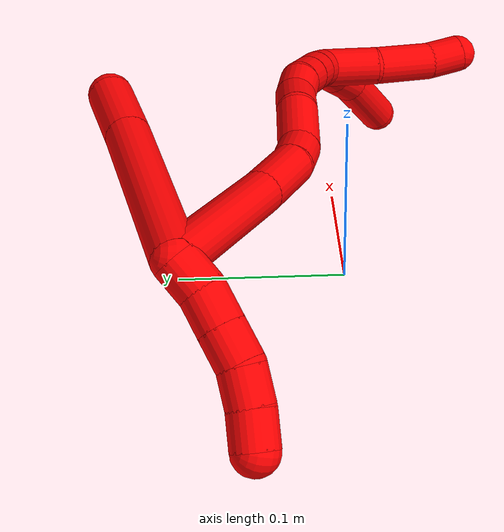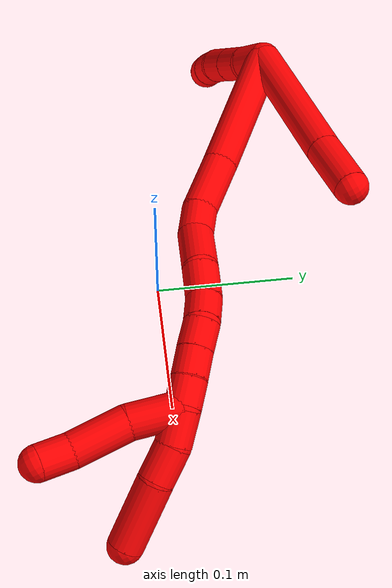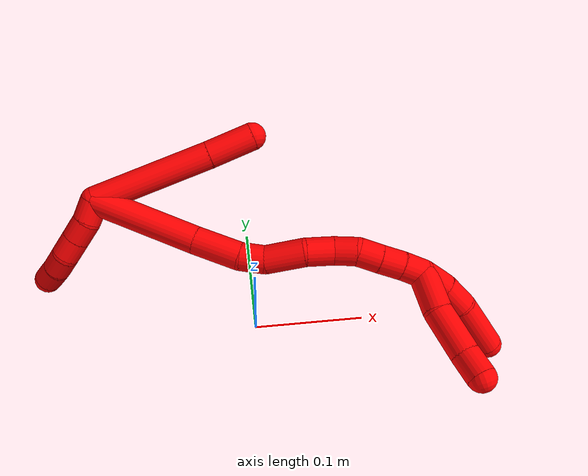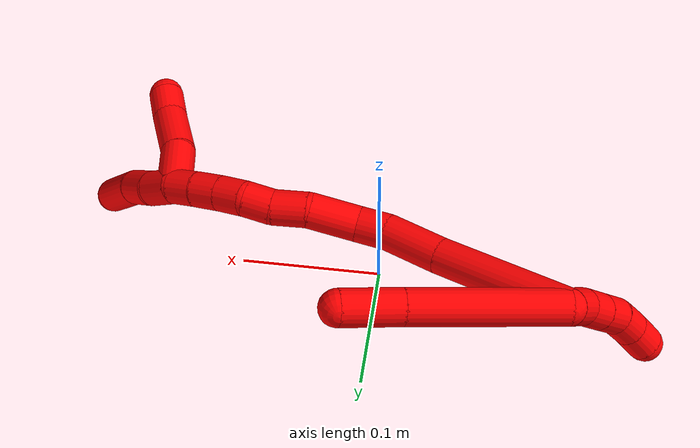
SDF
<sdf version="1.7">
 <world name="default">
  <model name="2">
   <static>0</static>
   <link name="2">
    <collision name="collision-cylinder-e_1_2_8">
     <pose>0.050316 0.019657 0.002866 -1.42604 1.19478 -1.06359</pose>
     <geometry><cylinder><radius>0.0125</radius><length>0.10819</length></cylinder></geometry>
     <surface>
      <friction><ode><mu>1.16</mu><mu2>1.16</mu2><slip1>0</slip1><slip2>0</slip2></ode></friction>
      <contact><ode><kp>1e+06</kp><kd>1</kd><max_vel>0</max_vel><min_depth>0.001</min_depth></ode></contact>
     </surface>
    </collision>
    <visual name="visual-cylinder-e_1_2_8">
     <pose>0.050316 0.019657 0.002866 -1.42604 1.19478 -1.06359</pose>
     <geometry><cylinder><radius>0.0125</radius><length>0.10819</length></cylinder></geometry>
     <material><ambient>1 0 0 1</ambient></material>
    </visual>
    <collision name="collision-cylinder-e_2_8_6">
     <pose>0.120029 0.046908 0.007481 -1.34427 1.18877 -0.986948</pose>
     <geometry><cylinder><radius>0.0125</radius><length>0.04181</length></cylinder></geometry>
     <surface>
      <friction><ode><mu>1.16</mu><mu2>1.16</mu2><slip1>0</slip1><slip2>0</slip2></ode></friction>
      <contact><ode><kp>1e+06</kp><kd>1</kd><max_vel>0</max_vel><min_depth>0.001</min_depth></ode></contact>
     </surface>
    </collision>
    <visual name="visual-cylinder-e_2_8_6">
     <pose>0.120029 0.046908 0.007481 -1.34427 1.18877 -0.986948</pose>
     <geometry><cylinder><radius>0.0125</radius><length>0.04181</length></cylinder></geometry>
     <material><ambient>1 0 0 1</ambient></material>
    </visual>
    <collision name="collision-cylinder-e_1_2_9">
     <pose>-0.007322 0.000735 -0.006771 -3.03345 -0.821552 2.89433</pose>
     <geometry><cylinder><radius>0.0125</radius><length>0.02</length></cylinder></geometry>
     <surface>
      <friction><ode><mu>1.16</mu><mu2>1.16</mu2><slip1>0</slip1><slip2>0</slip2></ode></friction>
      <contact><ode><kp>1e+06</kp><kd>1</kd><max_vel>0</max_vel><min_depth>0.001</min_depth></ode></contact>
     </surface>
    </collision>
    <visual name="visual-cylinder-e_1_2_9">
     <pose>-0.007322 0.000735 -0.006771 -3.03345 -0.821552 2.89433</pose>
     <geometry><cylinder><radius>0.0125</radius><length>0.02</length></cylinder></geometry>
     <material><ambient>1 0 0 1</ambient></material>
    </visual>
    <collision name="collision-cylinder-e_2_9_10">
     <pose>-0.023337 0.002649 -0.018343 -2.90081 -1.05377 2.73152</pose>
     <geometry><cylinder><radius>0.0125</radius><length>0.02</length></cylinder></geometry>
     <surface>
      <friction><ode><mu>1.16</mu><mu2>1.16</mu2><slip1>0</slip1><slip2>0</slip2></ode></friction>
      <contact><ode><kp>1e+06</kp><kd>1</kd><max_vel>0</max_vel><min_depth>0.001</min_depth></ode></contact>
     </surface>
    </collision>
    <visual name="visual-cylinder-e_2_9_10">
     <pose>-0.023337 0.002649 -0.018343 -2.90081 -1.05377 2.73152</pose>
     <geometry><cylinder><radius>0.0125</radius><length>0.02</length></cylinder></geometry>
     <material><ambient>1 0 0 1</ambient></material>
    </visual>
    <collision name="collision-cylinder-e_3_10_11">
     <pose>-0.040726 0.004938 -0.027953 -2.91485 -1.05448 2.75534</pose>
     <geometry><cylinder><radius>0.0125</radius><length>0.02</length></cylinder></geometry>
     <surface>
      <friction><ode><mu>1.16</mu><mu2>1.16</mu2><slip1>0</slip1><slip2>0</slip2></ode></friction>
      <contact><ode><kp>1e+06</kp><kd>1</kd><max_vel>0</max_vel><min_depth>0.001</min_depth></ode></contact>
     </surface>
    </collision>
    <visual name="visual-cylinder-e_3_10_11">
     <pose>-0.040726 0.004938 -0.027953 -2.91485 -1.05448 2.75534</pose>
     <geometry><cylinder><radius>0.0125</radius><length>0.02</length></cylinder></geometry>
     <material><ambient>1 0 0 1</ambient></material>
    </visual>
    <collision name="collision-cylinder-e_4_11_12">
     <pose>-0.058266 0.009422 -0.03599 -2.33383 -1.08506 1.90824</pose>
     <geometry><cylinder><radius>0.0125</radius><length>0.02</length></cylinder></geometry>
     <surface>
      <friction><ode><mu>1.16</mu><mu2>1.16</mu2><slip1>0</slip1><slip2>0</slip2></ode></friction>
      <contact><ode><kp>1e+06</kp><kd>1</kd><max_vel>0</max_vel><min_depth>0.001</min_depth></ode></contact>
     </surface>
    </collision>
    <visual name="visual-cylinder-e_4_11_12">
     <pose>-0.058266 0.009422 -0.03599 -2.33383 -1.08506 1.90824</pose>
     <geometry><cylinder><radius>0.0125</radius><length>0.02</length></cylinder></geometry>
     <material><ambient>1 0 0 1</ambient></material>
    </visual>
    <collision name="collision-cylinder-e_5_12_5">
     <pose>-0.076119 0.01664 -0.041228 -2.05286 -1.12205 1.60807</pose>
     <geometry><cylinder><radius>0.0125</radius><length>0.02</length></cylinder></geometry>
     <surface>
      <friction><ode><mu>1.16</mu><mu2>1.16</mu2><slip1>0</slip1><slip2>0</slip2></ode></friction>
      <contact><ode><kp>1e+06</kp><kd>1</kd><max_vel>0</max_vel><min_depth>0.001</min_depth></ode></contact>
     </surface>
    </collision>
    <visual name="visual-cylinder-e_5_12_5">
     <pose>-0.076119 0.01664 -0.041228 -2.05286 -1.12205 1.60807</pose>
     <geometry><cylinder><radius>0.0125</radius><length>0.02</length></cylinder></geometry>
     <material><ambient>1 0 0 1</ambient></material>
    </visual>
    <collision name="collision-cylinder-e_1_2_13">
     <pose>0.034279 0.012656 -0.031698 -2.76171 0.787558 -2.27479</pose>
     <geometry><cylinder><radius>0.0125</radius><length>0.096747</length></cylinder></geometry>
     <surface>
      <friction><ode><mu>1.16</mu><mu2>1.16</mu2><slip1>0</slip1><slip2>0</slip2></ode></friction>
      <contact><ode><kp>1e+06</kp><kd>1</kd><max_vel>0</max_vel><min_depth>0.001</min_depth></ode></contact>
     </surface>
    </collision>
    <visual name="visual-cylinder-e_1_2_13">
     <pose>0.034279 0.012656 -0.031698 -2.76171 0.787558 -2.27479</pose>
     <geometry><cylinder><radius>0.0125</radius><length>0.096747</length></cylinder></geometry>
     <material><ambient>1 0 0 1</ambient></material>
    </visual>
    <collision name="collision-cylinder-e_2_13_14">
     <pose>0.084042 0.029586 -0.076676 -2.83025 0.837405 -2.46351</pose>
     <geometry><cylinder><radius>0.0125</radius><length>0.041684</length></cylinder></geometry>
     <surface>
      <friction><ode><mu>1.16</mu><mu2>1.16</mu2><slip1>0</slip1><slip2>0</slip2></ode></friction>
      <contact><ode><kp>1e+06</kp><kd>1</kd><max_vel>0</max_vel><min_depth>0.001</min_depth></ode></contact>
     </surface>
    </collision>
    <visual name="visual-cylinder-e_2_13_14">
     <pose>0.084042 0.029586 -0.076676 -2.83025 0.837405 -2.46351</pose>
     <geometry><cylinder><radius>0.0125</radius><length>0.041684</length></cylinder></geometry>
     <material><ambient>1 0 0 1</ambient></material>
    </visual>
    <collision name="collision-cylinder-e_3_14_15">
     <pose>0.108681 0.037156 -0.094929 -2.55615 0.993392 -2.12668</pose>
     <geometry><cylinder><radius>0.0125</radius><length>0.021855</length></cylinder></geometry>
     <surface>
      <friction><ode><mu>1.16</mu><mu2>1.16</mu2><slip1>0</slip1><slip2>0</slip2></ode></friction>
      <contact><ode><kp>1e+06</kp><kd>1</kd><max_vel>0</max_vel><min_depth>0.001</min_depth></ode></contact>
     </surface>
    </collision>
    <visual name="visual-cylinder-e_3_14_15">
     <pose>0.108681 0.037156 -0.094929 -2.55615 0.993392 -2.12668</pose>
     <geometry><cylinder><radius>0.0125</radius><length>0.021855</length></cylinder></geometry>
     <material><ambient>1 0 0 1</ambient></material>
    </visual>
    <collision name="collision-cylinder-e_4_15_16">
     <pose>0.134884 0.043684 -0.102847 -2.31013 1.31966 -2.10694</pose>
     <geometry><cylinder><radius>0.0125</radius><length>0.035198</length></cylinder></geometry>
     <surface>
      <friction><ode><mu>1.16</mu><mu2>1.16</mu2><slip1>0</slip1><slip2>0</slip2></ode></friction>
      <contact><ode><kp>1e+06</kp><kd>1</kd><max_vel>0</max_vel><min_depth>0.001</min_depth></ode></contact>
     </surface>
    </collision>
    <visual name="visual-cylinder-e_4_15_16">
     <pose>0.134884 0.043684 -0.102847 -2.31013 1.31966 -2.10694</pose>
     <geometry><cylinder><radius>0.0125</radius><length>0.035198</length></cylinder></geometry>
     <material><ambient>1 0 0 1</ambient></material>
    </visual>
    <collision name="collision-cylinder-e_5_16_17">
     <pose>0.162537 0.052118 -0.109045 -2.12933 1.04639 -1.61062</pose>
     <geometry><cylinder><radius>0.0125</radius><length>0.024505</length></cylinder></geometry>
     <surface>
      <friction><ode><mu>1.16</mu><mu2>1.16</mu2><slip1>0</slip1><slip2>0</slip2></ode></friction>
      <contact><ode><kp>1e+06</kp><kd>1</kd><max_vel>0</max_vel><min_depth>0.001</min_depth></ode></contact>
     </surface>
    </collision>
    <visual name="visual-cylinder-e_5_16_17">
     <pose>0.162537 0.052118 -0.109045 -2.12933 1.04639 -1.61062</pose>
     <geometry><cylinder><radius>0.0125</radius><length>0.024505</length></cylinder></geometry>
     <material><ambient>1 0 0 1</ambient></material>
    </visual>
    <collision name="collision-cylinder-e_6_17_18">
     <pose>0.182119 0.059696 -0.116024 -2.57425 1.11317 -2.26525</pose>
     <geometry><cylinder><radius>0.0125</radius><length>0.020011</length></cylinder></geometry>
     <surface>
      <friction><ode><mu>1.16</mu><mu2>1.16</mu2><slip1>0</slip1><slip2>0</slip2></ode></friction>
      <contact><ode><kp>1e+06</kp><kd>1</kd><max_vel>0</max_vel><min_depth>0.001</min_depth></ode></contact>
     </surface>
    </collision>
    <visual name="visual-cylinder-e_6_17_18">
     <pose>0.182119 0.059696 -0.116024 -2.57425 1.11317 -2.26525</pose>
     <geometry><cylinder><radius>0.0125</radius><length>0.020011</length></cylinder></geometry>
     <material><ambient>1 0 0 1</ambient></material>
    </visual>
    <collision name="collision-cylinder-e_7_18_19">
     <pose>0.198132 0.065963 -0.125696 -2.56193 0.780657 -1.88718</pose>
     <geometry><cylinder><radius>0.0125</radius><length>0.02</length></cylinder></geometry>
     <surface>
      <friction><ode><mu>1.16</mu><mu2>1.16</mu2><slip1>0</slip1><slip2>0</slip2></ode></friction>
      <contact><ode><kp>1e+06</kp><kd>1</kd><max_vel>0</max_vel><min_depth>0.001</min_depth></ode></contact>
     </surface>
    </collision>
    <visual name="visual-cylinder-e_7_18_19">
     <pose>0.198132 0.065963 -0.125696 -2.56193 0.780657 -1.88718</pose>
     <geometry><cylinder><radius>0.0125</radius><length>0.02</length></cylinder></geometry>
     <material><ambient>1 0 0 1</ambient></material>
    </visual>
    <collision name="collision-cylinder-e_8_19_20">
     <pose>0.212227 0.074094 -0.137318 -2.50021 0.783359 -1.78698</pose>
     <geometry><cylinder><radius>0.0125</radius><length>0.02</length></cylinder></geometry>
     <surface>
      <friction><ode><mu>1.16</mu><mu2>1.16</mu2><slip1>0</slip1><slip2>0</slip2></ode></friction>
      <contact><ode><kp>1e+06</kp><kd>1</kd><max_vel>0</max_vel><min_depth>0.001</min_depth></ode></contact>
     </surface>
    </collision>
    <visual name="visual-cylinder-e_8_19_20">
     <pose>0.212227 0.074094 -0.137318 -2.50021 0.783359 -1.78698</pose>
     <geometry><cylinder><radius>0.0125</radius><length>0.02</length></cylinder></geometry>
     <material><ambient>1 0 0 1</ambient></material>
    </visual>
    <collision name="collision-cylinder-e_9_20_1">
     <pose>0.225766 0.082918 -0.149074 -2.49543 0.705337 -1.66531</pose>
     <geometry><cylinder><radius>0.0125</radius><length>0.02</length></cylinder></geometry>
     <surface>
      <friction><ode><mu>1.16</mu><mu2>1.16</mu2><slip1>0</slip1><slip2>0</slip2></ode></friction>
      <contact><ode><kp>1e+06</kp><kd>1</kd><max_vel>0</max_vel><min_depth>0.001</min_depth></ode></contact>
     </surface>
    </collision>
    <visual name="visual-cylinder-e_9_20_1">
     <pose>0.225766 0.082918 -0.149074 -2.49543 0.705337 -1.66531</pose>
     <geometry><cylinder><radius>0.0125</radius><length>0.02</length></cylinder></geometry>
     <material><ambient>1 0 0 1</ambient></material>
    </visual>
    <collision name="collision-cylinder-e_1_1_21">
     <pose>0.237418 0.094886 -0.163459 -2.41489 0.435297 -1.0536</pose>
     <geometry><cylinder><radius>0.0125</radius><length>0.024514</length></cylinder></geometry>
     <surface>
      <friction><ode><mu>1.16</mu><mu2>1.16</mu2><slip1>0</slip1><slip2>0</slip2></ode></friction>
      <contact><ode><kp>1e+06</kp><kd>1</kd><max_vel>0</max_vel><min_depth>0.001</min_depth></ode></contact>
     </surface>
    </collision>
    <visual name="visual-cylinder-e_1_1_21">
     <pose>0.237418 0.094886 -0.163459 -2.41489 0.435297 -1.0536</pose>
     <geometry><cylinder><radius>0.0125</radius><length>0.024514</length></cylinder></geometry>
     <material><ambient>1 0 0 1</ambient></material>
    </visual>
    <collision name="collision-cylinder-e_2_21_22">
     <pose>0.246353 0.108544 -0.182185 -2.59963 0.300365 -0.997508</pose>
     <geometry><cylinder><radius>0.0125</radius><length>0.025466</length></cylinder></geometry>
     <surface>
      <friction><ode><mu>1.16</mu><mu2>1.16</mu2><slip1>0</slip1><slip2>0</slip2></ode></friction>
      <contact><ode><kp>1e+06</kp><kd>1</kd><max_vel>0</max_vel><min_depth>0.001</min_depth></ode></contact>
     </surface>
    </collision>
    <visual name="visual-cylinder-e_2_21_22">
     <pose>0.246353 0.108544 -0.182185 -2.59963 0.300365 -0.997508</pose>
     <geometry><cylinder><radius>0.0125</radius><length>0.025466</length></cylinder></geometry>
     <material><ambient>1 0 0 1</ambient></material>
    </visual>
    <collision name="collision-cylinder-e_3_22_4">
     <pose>0.253051 0.129658 -0.212523 -2.50127 0.117434 -0.350939</pose>
     <geometry><cylinder><radius>0.0125</radius><length>0.05002</length></cylinder></geometry>
     <surface>
      <friction><ode><mu>1.16</mu><mu2>1.16</mu2><slip1>0</slip1><slip2>0</slip2></ode></friction>
      <contact><ode><kp>1e+06</kp><kd>1</kd><max_vel>0</max_vel><min_depth>0.001</min_depth></ode></contact>
     </surface>
    </collision>
    <visual name="visual-cylinder-e_3_22_4">
     <pose>0.253051 0.129658 -0.212523 -2.50127 0.117434 -0.350939</pose>
     <geometry><cylinder><radius>0.0125</radius><length>0.05002</length></cylinder></geometry>
     <material><ambient>1 0 0 1</ambient></material>
    </visual>
    <collision name="collision-cylinder-e_1_1_23">
     <pose>0.233293 0.081657 -0.172237 2.81192 0.057757 0.343877</pose>
     <geometry><cylinder><radius>0.0125</radius><length>0.036172</length></cylinder></geometry>
     <surface>
      <friction><ode><mu>1.16</mu><mu2>1.16</mu2><slip1>0</slip1><slip2>0</slip2></ode></friction>
      <contact><ode><kp>1e+06</kp><kd>1</kd><max_vel>0</max_vel><min_depth>0.001</min_depth></ode></contact>
     </surface>
    </collision>
    <visual name="visual-cylinder-e_1_1_23">
     <pose>0.233293 0.081657 -0.172237 2.81192 0.057757 0.343877</pose>
     <geometry><cylinder><radius>0.0125</radius><length>0.036172</length></cylinder></geometry>
     <material><ambient>1 0 0 1</ambient></material>
    </visual>
    <collision name="collision-cylinder-e_2_23_24">
     <pose>0.238958 0.072148 -0.208854 2.9562 0.22843 1.77949</pose>
     <geometry><cylinder><radius>0.0125</radius><length>0.040809</length></cylinder></geometry>
     <surface>
      <friction><ode><mu>1.16</mu><mu2>1.16</mu2><slip1>0</slip1><slip2>0</slip2></ode></friction>
      <contact><ode><kp>1e+06</kp><kd>1</kd><max_vel>0</max_vel><min_depth>0.001</min_depth></ode></contact>
     </surface>
    </collision>
    <visual name="visual-cylinder-e_2_23_24">
     <pose>0.238958 0.072148 -0.208854 2.9562 0.22843 1.77949</pose>
     <geometry><cylinder><radius>0.0125</radius><length>0.040809</length></cylinder></geometry>
     <material><ambient>1 0 0 1</ambient></material>
    </visual>
    <collision name="collision-cylinder-e_3_24_3">
     <pose>0.246805 0.064558 -0.238714 2.7782 0.284117 1.32294</pose>
     <geometry><cylinder><radius>0.0125</radius><length>0.023019</length></cylinder></geometry>
     <surface>
      <friction><ode><mu>1.16</mu><mu2>1.16</mu2><slip1>0</slip1><slip2>0</slip2></ode></friction>
      <contact><ode><kp>1e+06</kp><kd>1</kd><max_vel>0</max_vel><min_depth>0.001</min_depth></ode></contact>
     </surface>
    </collision>
    <visual name="visual-cylinder-e_3_24_3">
     <pose>0.246805 0.064558 -0.238714 2.7782 0.284117 1.32294</pose>
     <geometry><cylinder><radius>0.0125</radius><length>0.023019</length></cylinder></geometry>
     <material><ambient>1 0 0 1</ambient></material>
    </visual>
    <collision name="collision-sphere-3">
     <pose>0.250031 0.060631 -0.249041 0 -0 0</pose>
     <geometry><sphere><radius>0.0125</radius></sphere></geometry>
     <surface>
      <friction><ode><mu>1.16</mu><mu2>1.16</mu2><slip1>0</slip1><slip2>0</slip2></ode></friction>
      <contact><ode><kp>1e+06</kp><kd>1</kd><max_vel>0</max_vel><min_depth>0.001</min_depth></ode></contact>
     </surface>
    </collision>
    <visual name="visual-sphere-3">
     <pose>0.250031 0.060631 -0.249041 0 -0 0</pose>
     <geometry><sphere><radius>0.0125</radius></sphere></geometry>
     <material><ambient>1 0 0 1</ambient></material>
    </visual>
    <collision name="collision-sphere-24">
     <pose>0.243578 0.068485 -0.228388 0 -0 0</pose>
     <geometry><sphere><radius>0.0125</radius></sphere></geometry>
     <surface>
      <friction><ode><mu>1.16</mu><mu2>1.16</mu2><slip1>0</slip1><slip2>0</slip2></ode></friction>
      <contact><ode><kp>1e+06</kp><kd>1</kd><max_vel>0</max_vel><min_depth>0.001</min_depth></ode></contact>
     </surface>
    </collision>
    <visual name="visual-sphere-24">
     <pose>0.243578 0.068485 -0.228388 0 -0 0</pose>
     <geometry><sphere><radius>0.0125</radius></sphere></geometry>
     <material><ambient>1 0 0 1</ambient></material>
    </visual>
    <collision name="collision-sphere-23">
     <pose>0.234337 0.075812 -0.18932 0 -0 0</pose>
     <geometry><sphere><radius>0.0125</radius></sphere></geometry>
     <surface>
      <friction><ode><mu>1.16</mu><mu2>1.16</mu2><slip1>0</slip1><slip2>0</slip2></ode></friction>
      <contact><ode><kp>1e+06</kp><kd>1</kd><max_vel>0</max_vel><min_depth>0.001</min_depth></ode></contact>
     </surface>
    </collision>
    <visual name="visual-sphere-23">
     <pose>0.234337 0.075812 -0.18932 0 -0 0</pose>
     <geometry><sphere><radius>0.0125</radius></sphere></geometry>
     <material><ambient>1 0 0 1</ambient></material>
    </visual>
    <collision name="collision-sphere-4">
     <pose>0.255981 0.144497 -0.23244 0 -0 0</pose>
     <geometry><sphere><radius>0.0125</radius></sphere></geometry>
     <surface>
      <friction><ode><mu>1.16</mu><mu2>1.16</mu2><slip1>0</slip1><slip2>0</slip2></ode></friction>
      <contact><ode><kp>1e+06</kp><kd>1</kd><max_vel>0</max_vel><min_depth>0.001</min_depth></ode></contact>
     </surface>
    </collision>
    <visual name="visual-sphere-4">
     <pose>0.255981 0.144497 -0.23244 0 -0 0</pose>
     <geometry><sphere><radius>0.0125</radius></sphere></geometry>
     <material><ambient>1 0 0 1</ambient></material>
    </visual>
    <collision name="collision-sphere-22">
     <pose>0.250121 0.114818 -0.192605 0 -0 0</pose>
     <geometry><sphere><radius>0.0125</radius></sphere></geometry>
     <surface>
      <friction><ode><mu>1.16</mu><mu2>1.16</mu2><slip1>0</slip1><slip2>0</slip2></ode></friction>
      <contact><ode><kp>1e+06</kp><kd>1</kd><max_vel>0</max_vel><min_depth>0.001</min_depth></ode></contact>
     </surface>
    </collision>
    <visual name="visual-sphere-22">
     <pose>0.250121 0.114818 -0.192605 0 -0 0</pose>
     <geometry><sphere><radius>0.0125</radius></sphere></geometry>
     <material><ambient>1 0 0 1</ambient></material>
    </visual>
    <collision name="collision-sphere-21">
     <pose>0.242586 0.102271 -0.171765 0 -0 0</pose>
     <geometry><sphere><radius>0.0125</radius></sphere></geometry>
     <surface>
      <friction><ode><mu>1.16</mu><mu2>1.16</mu2><slip1>0</slip1><slip2>0</slip2></ode></friction>
      <contact><ode><kp>1e+06</kp><kd>1</kd><max_vel>0</max_vel><min_depth>0.001</min_depth></ode></contact>
     </surface>
    </collision>
    <visual name="visual-sphere-21">
     <pose>0.242586 0.102271 -0.171765 0 -0 0</pose>
     <geometry><sphere><radius>0.0125</radius></sphere></geometry>
     <material><ambient>1 0 0 1</ambient></material>
    </visual>
    <collision name="collision-sphere-1">
     <pose>0.232249 0.087502 -0.155153 0 -0 0</pose>
     <geometry><sphere><radius>0.0125</radius></sphere></geometry>
     <surface>
      <friction><ode><mu>1.16</mu><mu2>1.16</mu2><slip1>0</slip1><slip2>0</slip2></ode></friction>
      <contact><ode><kp>1e+06</kp><kd>1</kd><max_vel>0</max_vel><min_depth>0.001</min_depth></ode></contact>
     </surface>
    </collision>
    <visual name="visual-sphere-1">
     <pose>0.232249 0.087502 -0.155153 0 -0 0</pose>
     <geometry><sphere><radius>0.0125</radius></sphere></geometry>
     <material><ambient>1 0 0 1</ambient></material>
    </visual>
    <collision name="collision-sphere-11">
     <pose>-0.049423 0.006047 -0.032764 0 -0 0</pose>
     <geometry><sphere><radius>0.0125</radius></sphere></geometry>
     <surface>
      <friction><ode><mu>1.16</mu><mu2>1.16</mu2><slip1>0</slip1><slip2>0</slip2></ode></friction>
      <contact><ode><kp>1e+06</kp><kd>1</kd><max_vel>0</max_vel><min_depth>0.001</min_depth></ode></contact>
     </surface>
    </collision>
    <visual name="visual-sphere-11">
     <pose>-0.049423 0.006047 -0.032764 0 -0 0</pose>
     <geometry><sphere><radius>0.0125</radius></sphere></geometry>
     <material><ambient>1 0 0 1</ambient></material>
    </visual>
    <collision name="collision-sphere-10">
     <pose>-0.03203 0.003828 -0.023143 0 -0 0</pose>
     <geometry><sphere><radius>0.0125</radius></sphere></geometry>
     <surface>
      <friction><ode><mu>1.16</mu><mu2>1.16</mu2><slip1>0</slip1><slip2>0</slip2></ode></friction>
      <contact><ode><kp>1e+06</kp><kd>1</kd><max_vel>0</max_vel><min_depth>0.001</min_depth></ode></contact>
     </surface>
    </collision>
    <visual name="visual-sphere-10">
     <pose>-0.03203 0.003828 -0.023143 0 -0 0</pose>
     <geometry><sphere><radius>0.0125</radius></sphere></geometry>
     <material><ambient>1 0 0 1</ambient></material>
    </visual>
    <collision name="collision-sphere-6">
     <pose>0.139427 0.054503 0.009232 0 -0 0</pose>
     <geometry><sphere><radius>0.0125</radius></sphere></geometry>
     <surface>
      <friction><ode><mu>1.16</mu><mu2>1.16</mu2><slip1>0</slip1><slip2>0</slip2></ode></friction>
      <contact><ode><kp>1e+06</kp><kd>1</kd><max_vel>0</max_vel><min_depth>0.001</min_depth></ode></contact>
     </surface>
    </collision>
    <visual name="visual-sphere-6">
     <pose>0.139427 0.054503 0.009232 0 -0 0</pose>
     <geometry><sphere><radius>0.0125</radius></sphere></geometry>
     <material><ambient>1 0 0 1</ambient></material>
    </visual>
    <collision name="collision-sphere-9">
     <pose>-0.014644 0.00147 -0.013542 0 -0 0</pose>
     <geometry><sphere><radius>0.0125</radius></sphere></geometry>
     <surface>
      <friction><ode><mu>1.16</mu><mu2>1.16</mu2><slip1>0</slip1><slip2>0</slip2></ode></friction>
      <contact><ode><kp>1e+06</kp><kd>1</kd><max_vel>0</max_vel><min_depth>0.001</min_depth></ode></contact>
     </surface>
    </collision>
    <visual name="visual-sphere-9">
     <pose>-0.014644 0.00147 -0.013542 0 -0 0</pose>
     <geometry><sphere><radius>0.0125</radius></sphere></geometry>
     <material><ambient>1 0 0 1</ambient></material>
    </visual>
    <collision name="collision-sphere-2">
     <geometry><sphere><radius>0.0125</radius></sphere></geometry>
     <surface>
      <friction><ode><mu>1.16</mu><mu2>1.16</mu2><slip1>0</slip1><slip2>0</slip2></ode></friction>
      <contact><ode><kp>1e+06</kp><kd>1</kd><max_vel>0</max_vel><min_depth>0.001</min_depth></ode></contact>
     </surface>
    </collision>
    <visual name="visual-sphere-2">
     <geometry><sphere><radius>0.0125</radius></sphere></geometry>
     <material><ambient>1 0 0 1</ambient></material>
    </visual>
    <collision name="collision-sphere-19">
     <pose>0.20517 0.069855 -0.13164 0 -0 0</pose>
     <geometry><sphere><radius>0.0125</radius></sphere></geometry>
     <surface>
      <friction><ode><mu>1.16</mu><mu2>1.16</mu2><slip1>0</slip1><slip2>0</slip2></ode></friction>
      <contact><ode><kp>1e+06</kp><kd>1</kd><max_vel>0</max_vel><min_depth>0.001</min_depth></ode></contact>
     </surface>
    </collision>
    <visual name="visual-sphere-19">
     <pose>0.20517 0.069855 -0.13164 0 -0 0</pose>
     <geometry><sphere><radius>0.0125</radius></sphere></geometry>
     <material><ambient>1 0 0 1</ambient></material>
    </visual>
    <collision name="collision-sphere-8">
     <pose>0.100631 0.039314 0.005731 0 -0 0</pose>
     <geometry><sphere><radius>0.0125</radius></sphere></geometry>
     <surface>
      <friction><ode><mu>1.16</mu><mu2>1.16</mu2><slip1>0</slip1><slip2>0</slip2></ode></friction>
      <contact><ode><kp>1e+06</kp><kd>1</kd><max_vel>0</max_vel><min_depth>0.001</min_depth></ode></contact>
     </surface>
    </collision>
    <visual name="visual-sphere-8">
     <pose>0.100631 0.039314 0.005731 0 -0 0</pose>
     <geometry><sphere><radius>0.0125</radius></sphere></geometry>
     <material><ambient>1 0 0 1</ambient></material>
    </visual>
    <collision name="collision-sphere-12">
     <pose>-0.067109 0.012796 -0.039217 0 -0 0</pose>
     <geometry><sphere><radius>0.0125</radius></sphere></geometry>
     <surface>
      <friction><ode><mu>1.16</mu><mu2>1.16</mu2><slip1>0</slip1><slip2>0</slip2></ode></friction>
      <contact><ode><kp>1e+06</kp><kd>1</kd><max_vel>0</max_vel><min_depth>0.001</min_depth></ode></contact>
     </surface>
    </collision>
    <visual name="visual-sphere-12">
     <pose>-0.067109 0.012796 -0.039217 0 -0 0</pose>
     <geometry><sphere><radius>0.0125</radius></sphere></geometry>
     <material><ambient>1 0 0 1</ambient></material>
    </visual>
    <collision name="collision-sphere-5">
     <pose>-0.085129 0.020484 -0.043239 0 -0 0</pose>
     <geometry><sphere><radius>0.0125</radius></sphere></geometry>
     <surface>
      <friction><ode><mu>1.16</mu><mu2>1.16</mu2><slip1>0</slip1><slip2>0</slip2></ode></friction>
      <contact><ode><kp>1e+06</kp><kd>1</kd><max_vel>0</max_vel><min_depth>0.001</min_depth></ode></contact>
     </surface>
    </collision>
    <visual name="visual-sphere-5">
     <pose>-0.085129 0.020484 -0.043239 0 -0 0</pose>
     <geometry><sphere><radius>0.0125</radius></sphere></geometry>
     <material><ambient>1 0 0 1</ambient></material>
    </visual>
    <collision name="collision-sphere-13">
     <pose>0.068558 0.025313 -0.063396 0 -0 0</pose>
     <geometry><sphere><radius>0.0125</radius></sphere></geometry>
     <surface>
      <friction><ode><mu>1.16</mu><mu2>1.16</mu2><slip1>0</slip1><slip2>0</slip2></ode></friction>
      <contact><ode><kp>1e+06</kp><kd>1</kd><max_vel>0</max_vel><min_depth>0.001</min_depth></ode></contact>
     </surface>
    </collision>
    <visual name="visual-sphere-13">
     <pose>0.068558 0.025313 -0.063396 0 -0 0</pose>
     <geometry><sphere><radius>0.0125</radius></sphere></geometry>
     <material><ambient>1 0 0 1</ambient></material>
    </visual>
    <collision name="collision-sphere-14">
     <pose>0.099525 0.03386 -0.089957 0 -0 0</pose>
     <geometry><sphere><radius>0.0125</radius></sphere></geometry>
     <surface>
      <friction><ode><mu>1.16</mu><mu2>1.16</mu2><slip1>0</slip1><slip2>0</slip2></ode></friction>
      <contact><ode><kp>1e+06</kp><kd>1</kd><max_vel>0</max_vel><min_depth>0.001</min_depth></ode></contact>
     </surface>
    </collision>
    <visual name="visual-sphere-14">
     <pose>0.099525 0.03386 -0.089957 0 -0 0</pose>
     <geometry><sphere><radius>0.0125</radius></sphere></geometry>
     <material><ambient>1 0 0 1</ambient></material>
    </visual>
    <collision name="collision-sphere-15">
     <pose>0.117837 0.040452 -0.0999 0 -0 0</pose>
     <geometry><sphere><radius>0.0125</radius></sphere></geometry>
     <surface>
      <friction><ode><mu>1.16</mu><mu2>1.16</mu2><slip1>0</slip1><slip2>0</slip2></ode></friction>
      <contact><ode><kp>1e+06</kp><kd>1</kd><max_vel>0</max_vel><min_depth>0.001</min_depth></ode></contact>
     </surface>
    </collision>
    <visual name="visual-sphere-15">
     <pose>0.117837 0.040452 -0.0999 0 -0 0</pose>
     <geometry><sphere><radius>0.0125</radius></sphere></geometry>
     <material><ambient>1 0 0 1</ambient></material>
    </visual>
    <collision name="collision-sphere-16">
     <pose>0.151931 0.046916 -0.105794 0 -0 0</pose>
     <geometry><sphere><radius>0.0125</radius></sphere></geometry>
     <surface>
      <friction><ode><mu>1.16</mu><mu2>1.16</mu2><slip1>0</slip1><slip2>0</slip2></ode></friction>
      <contact><ode><kp>1e+06</kp><kd>1</kd><max_vel>0</max_vel><min_depth>0.001</min_depth></ode></contact>
     </surface>
    </collision>
    <visual name="visual-sphere-16">
     <pose>0.151931 0.046916 -0.105794 0 -0 0</pose>
     <geometry><sphere><radius>0.0125</radius></sphere></geometry>
     <material><ambient>1 0 0 1</ambient></material>
    </visual>
    <collision name="collision-sphere-17">
     <pose>0.173143 0.05732 -0.112296 0 -0 0</pose>
     <geometry><sphere><radius>0.0125</radius></sphere></geometry>
     <surface>
      <friction><ode><mu>1.16</mu><mu2>1.16</mu2><slip1>0</slip1><slip2>0</slip2></ode></friction>
      <contact><ode><kp>1e+06</kp><kd>1</kd><max_vel>0</max_vel><min_depth>0.001</min_depth></ode></contact>
     </surface>
    </collision>
    <visual name="visual-sphere-17">
     <pose>0.173143 0.05732 -0.112296 0 -0 0</pose>
     <geometry><sphere><radius>0.0125</radius></sphere></geometry>
     <material><ambient>1 0 0 1</ambient></material>
    </visual>
    <collision name="collision-sphere-18">
     <pose>0.191095 0.062072 -0.119752 0 -0 0</pose>
     <geometry><sphere><radius>0.0125</radius></sphere></geometry>
     <surface>
      <friction><ode><mu>1.16</mu><mu2>1.16</mu2><slip1>0</slip1><slip2>0</slip2></ode></friction>
      <contact><ode><kp>1e+06</kp><kd>1</kd><max_vel>0</max_vel><min_depth>0.001</min_depth></ode></contact>
     </surface>
    </collision>
    <visual name="visual-sphere-18">
     <pose>0.191095 0.062072 -0.119752 0 -0 0</pose>
     <geometry><sphere><radius>0.0125</radius></sphere></geometry>
     <material><ambient>1 0 0 1</ambient></material>
    </visual>
    <collision name="collision-sphere-20">
     <pose>0.219283 0.078333 -0.142995 0 -0 0</pose>
     <geometry><sphere><radius>0.0125</radius></sphere></geometry>
     <surface>
      <friction><ode><mu>1.16</mu><mu2>1.16</mu2><slip1>0</slip1><slip2>0</slip2></ode></friction>
      <contact><ode><kp>1e+06</kp><kd>1</kd><max_vel>0</max_vel><min_depth>0.001</min_depth></ode></contact>
     </surface>
    </collision>
    <visual name="visual-sphere-20">
     <pose>0.219283 0.078333 -0.142995 0 -0 0</pose>
     <geometry><sphere><radius>0.0125</radius></sphere></geometry>
     <material><ambient>1 0 0 1</ambient></material>
    </visual>
    <inertial>
     <pose>0.119016 0.047299 -0.088935 0 -0 0</pose>
     <mass>0.75</mass>
     <inertia>
      <ixx>-6.6e-05</ixx>
      <ixy>0</ixy>
      <ixz>0</ixz>
      <iyy>0.000108</iyy>
      <iyz>0</iyz>
      <izz>-0.000288</izz>
     </inertia>
    </inertial>
   </link>
   <pose>-0.133233 0.093639 0.093643 -1.16657 -0.479591 0.063806</pose>
  </model>
 </world>
</sdf>
